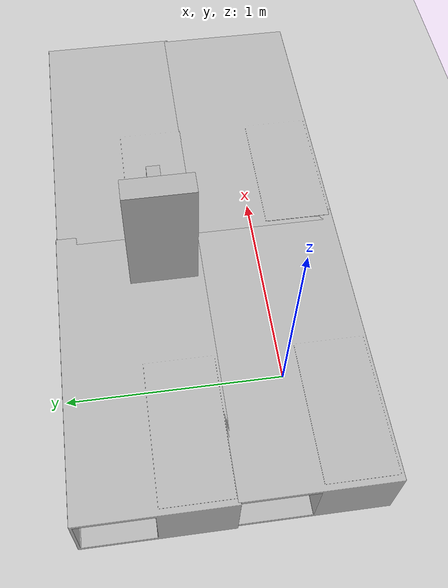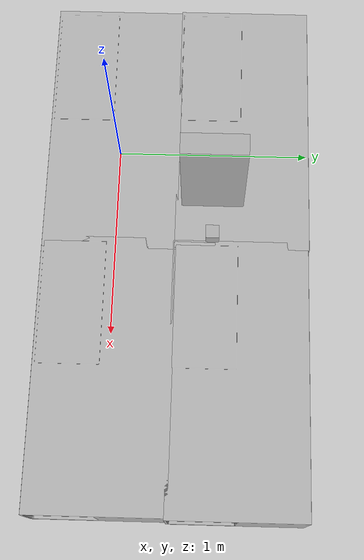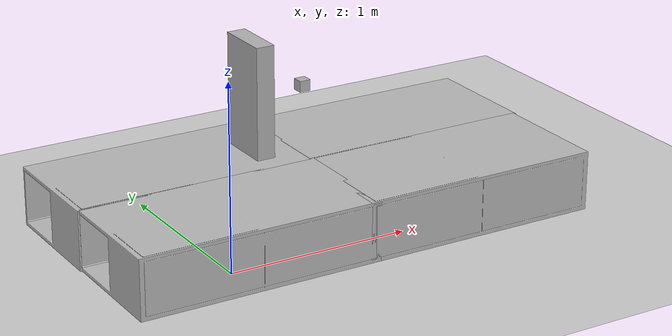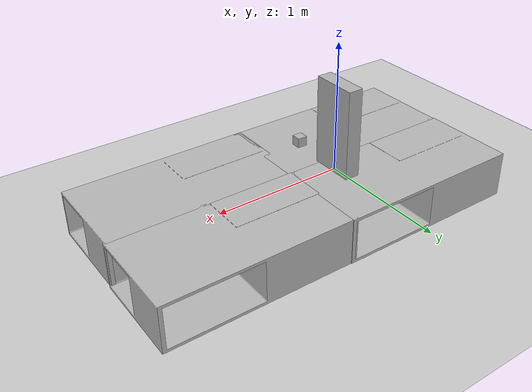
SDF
<sdf version='1.9'>
  <world name='empty_world'>
    <gravity>0 0 -9.8</gravity>
    <magnetic_field>6e-06 2.3e-05 -4.2e-05</magnetic_field>
    <atmosphere type='adiabatic'/>
    <physics type='ode'>
      <max_step_size>0.001</max_step_size>
      <real_time_factor>1</real_time_factor>
      <real_time_update_rate>1000</real_time_update_rate>
    </physics>
    <scene>
      <ambient>0.4 0.4 0.4 1</ambient>
      <background>0.7 0.7 0.7 1</background>
      <shadows>true</shadows>
    </scene>

  <!-- ================= WALL OBSTACLE ================= -->
  <model name="wall_obstacle">
    <static>false</static>
    <link name="wall_link">
      <pose>0.4 0.5 0.70 0 0 0</pose>
      <collision name="wall_collision">
        <geometry>
          <box>
            <size>0.1 0.3 0.6</size>
          </box>
        </geometry>
      </collision>
      <visual name="wall_visual">
        <geometry>
          <box>
            <size>0.1 0.3 0.6</size>
          </box>
        </geometry>
        <material>
          <ambient>0.3 0.3 0.3 1</ambient>
          <diffuse>0.7 0.7 0.7 1</diffuse>
          <specular>1 1 1 1</specular>
        </material>
      </visual>
    </link>
  </model>

  <!-- ================= CUBE ================= -->
  <model name="cube">
    <static>false</static>
    <link name="cube_link">
      <pose>0.7 0.5 0.70 0 0 0</pose>
      <collision name="cube_collision">
        <geometry>
          <box>
            <size>0.06 0.06 0.06</size>
          </box>
        </geometry>
      </collision>
      <visual name="cube_visual">
        <geometry>
          <box>
            <size>0.06 0.06 0.06</size>
          </box>
        </geometry>
        <material>
          <ambient>0.3 0.3 0.3 1</ambient>
          <diffuse>0.7 0.7 0.7 1</diffuse>
          <specular>1 1 1 1</specular>
        </material>
      </visual>
    </link>
  </model>

    <model name='CoffeeTable_1'>
      <static>true</static>
      <model name='aws_robomaker_residential_CoffeeTable_01'>
        <link name='link'>
          <inertial>
            <mass>21.699999999999999</mass>
            <inertia>
              <ixx>0.81374999999999975</ixx>
              <ixy>0</ixy>
              <ixz>0</ixz>
              <iyy>2.76675</iyy>
              <iyz>0</iyz>
              <izz>3.254</izz>
            </inertia>
          </inertial>
          <collision name='collision'>
            <geometry>
              <mesh>
                <uri>model://aws_robomaker_residential_CoffeeTable_01/meshes/aws_CoffeeTable_01_collision.DAE</uri>
                <scale>1 1 1</scale>
              </mesh>
            </geometry>
            <surface>
              <contact>
                <ode>
                  <max_vel>0.01</max_vel>
                </ode>
              </contact>
            </surface>
          </collision>
          <visual name='visual'>
            <geometry>
              <mesh>
                <uri>model://aws_robomaker_residential_CoffeeTable_01/meshes/aws_CoffeeTable_01_visual.DAE</uri>
              </mesh>
            </geometry>
            <meta>
              <layer>1</layer>
            </meta>
          </visual>
        </link>
        <static>true</static>
      </model>
      <pose>0 0 0.041983 0 -0 0</pose>
      <self_collide>false</self_collide>
    </model>
    <model name='CoffeeTable_2'>
      <static>true</static>
      <model name='aws_robomaker_residential_CoffeeTable_01'>
        <link name='link'>
          <inertial>
            <mass>21.699999999999999</mass>
            <inertia>
              <ixx>0.81374999999999975</ixx>
              <ixy>0</ixy>
              <ixz>0</ixz>
              <iyy>2.76675</iyy>
              <iyz>0</iyz>
              <izz>3.254</izz>
            </inertia>
          </inertial>
          <collision name='collision'>
            <geometry>
              <mesh>
                <uri>model://aws_robomaker_residential_CoffeeTable_01/meshes/aws_CoffeeTable_01_collision.DAE</uri>
                <scale>1 1 1</scale>
              </mesh>
            </geometry>
            <surface>
              <contact>
                <ode>
                  <max_vel>0.01</max_vel>
                </ode>
              </contact>
            </surface>
          </collision>
          <visual name='visual'>
            <geometry>
              <mesh>
                <uri>model://aws_robomaker_residential_CoffeeTable_01/meshes/aws_CoffeeTable_01_visual.DAE</uri>
              </mesh>
            </geometry>
            <meta>
              <layer>1</layer>
            </meta>
          </visual>
        </link>
        <static>true</static>
      </model>
      <pose>1.2577 0 0.041983 0 -0 0</pose>
      <self_collide>false</self_collide>
    </model>
    <model name='CoffeeTable_3'>
      <static>true</static>
      <model name='aws_robomaker_residential_CoffeeTable_01'>
        <link name='link'>
          <inertial>
            <mass>21.699999999999999</mass>
            <inertia>
              <ixx>0.81374999999999975</ixx>
              <ixy>0</ixy>
              <ixz>0</ixz>
              <iyy>2.76675</iyy>
              <iyz>0</iyz>
              <izz>3.254</izz>
            </inertia>
          </inertial>
          <collision name='collision'>
            <geometry>
              <mesh>
                <uri>model://aws_robomaker_residential_CoffeeTable_01/meshes/aws_CoffeeTable_01_collision.DAE</uri>
                <scale>1 1 1</scale>
              </mesh>
            </geometry>
            <surface>
              <contact>
                <ode>
                  <max_vel>0.01</max_vel>
                </ode>
              </contact>
            </surface>
          </collision>
          <visual name='visual'>
            <geometry>
              <mesh>
                <uri>model://aws_robomaker_residential_CoffeeTable_01/meshes/aws_CoffeeTable_01_visual.DAE</uri>
              </mesh>
            </geometry>
            <meta>
              <layer>1</layer>
            </meta>
          </visual>
        </link>
        <static>true</static>
      </model>
      <pose>1.26554 0.637963 0.041983 0 -0 0</pose>
      <self_collide>false</self_collide>
    </model>
    <model name='CoffeeTable_4'>
      <static>true</static>
      <model name='aws_robomaker_residential_CoffeeTable_01'>
        <link name='link'>
          <inertial>
            <mass>21.699999999999999</mass>
            <inertia>
              <ixx>0.81374999999999975</ixx>
              <ixy>0</ixy>
              <ixz>0</ixz>
              <iyy>2.76675</iyy>
              <iyz>0</iyz>
              <izz>3.254</izz>
            </inertia>
          </inertial>
          <collision name='collision'>
            <geometry>
              <mesh>
                <uri>model://aws_robomaker_residential_CoffeeTable_01/meshes/aws_CoffeeTable_01_collision.DAE</uri>
                <scale>1 1 1</scale>
              </mesh>
            </geometry>
            <surface>
              <contact>
                <ode>
                  <max_vel>0.01</max_vel>
                </ode>
              </contact>
            </surface>
          </collision>
          <visual name='visual'>
            <geometry>
              <mesh>
                <uri>model://aws_robomaker_residential_CoffeeTable_01/meshes/aws_CoffeeTable_01_visual.DAE</uri>
              </mesh>
            </geometry>
            <meta>
              <layer>1</layer>
            </meta>
          </visual>
        </link>
        <static>true</static>
      </model>
      <pose>-0.008642 0.643146 0.041983 0 -0 0</pose>
      <self_collide>false</self_collide>
    </model>
    <model name='ground_plane'>
      <static>true</static>
      <link name='link'>
        <collision name='collision'>
          <geometry>
            <plane>
              <normal>0 0 1</normal>
              <size>1 1</size>
            </plane>
          </geometry>
          <surface>
            <friction>
              <ode/>
            </friction>
            <bounce/>
            <contact/>
          </surface>
        </collision>
        <visual name='visual'>
          <geometry>
            <plane>
              <normal>0 0 1</normal>
              <size>100 100</size>
            </plane>
          </geometry>
          <material>
            <ambient>0.8 0.8 0.8 1</ambient>
            <diffuse>0.8 0.8 0.8 1</diffuse>
            <specular>0.8 0.8 0.8 1</specular>
          </material>
        </visual>
        <pose>0 0 0 0 -0 0</pose>
        <inertial>
          <pose>0 0 0 0 -0 0</pose>
          <mass>1</mass>
          <inertia>
            <ixx>1</ixx>
            <ixy>0</ixy>
            <ixz>0</ixz>
            <iyy>1</iyy>
            <iyz>0</iyz>
            <izz>1</izz>
          </inertia>
        </inertial>
        <enable_wind>false</enable_wind>
      </link>
      <pose>0 0 0 0 -0 0</pose>
      <self_collide>false</self_collide>
    </model>
    <light name='sun' type='directional'>
      <pose>0 0 10 0 -0 0</pose>
      <cast_shadows>true</cast_shadows>
      <intensity>1</intensity>
      <direction>-0.5 0.1 -0.9</direction>
      <diffuse>0.8 0.8 0.8 1</diffuse>
      <specular>0.2 0.2 0.2 1</specular>
      <attenuation>
        <range>1000</range>
        <linear>0.01</linear>
        <constant>0.90000000000000002</constant>
        <quadratic>0.001</quadratic>
      </attenuation>
      <spot>
        <inner_angle>0</inner_angle>
        <outer_angle>0</outer_angle>
        <falloff>0</falloff>
      </spot>
    </light>
  </world>
</sdf>
